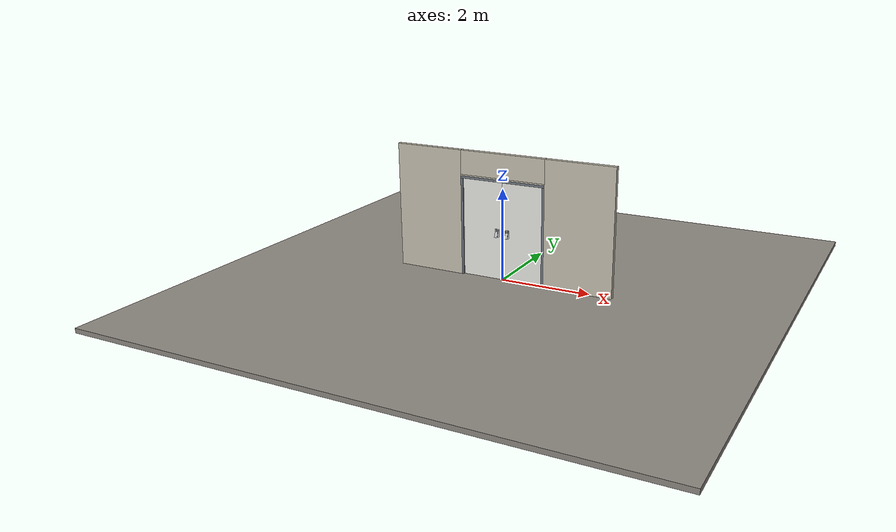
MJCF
<?xml version="1.0" ?>
<mujoco model="db0536_swing_double_minimal">
  <compiler angle="radian" meshdir="../../hardware" texturedir="../../textures" autolimits="true" inertiafromgeom="false"/>
  <option timestep="0.002" integrator="implicitfast" cone="elliptic" impratio="10" noslip_iterations="3">
    <flag multiccd="enable"/>
  </option>
  <size memory="16M"/>
  <default>
    <geom condim="4" solref="0.005 1" solimp="0.95 0.99 0.001"/>
    <joint solreflimit="0.005 1" solimplimit="0.95 0.99 0.001"/>
    <tendon solreflimit="0.005 1"/>
    <equality solref="0.002 1"/>
  </default>
  <visual>
    <headlight ambient="0.4 0.4 0.4" diffuse="0.7 0.7 0.7" specular="0.2 0.2 0.2"/>
    <quality shadowsize="4096"/>
    <map znear="0.01" zfar="60"/>
  </visual>
  <asset>
    <material name="mat_floor" rgba="0.55 0.53 0.5 1" specular="0.2" shininess="0.15" reflectance="0"/>
    <material name="mat_wall" rgba="0.78 0.76 0.7 1" specular="0.2" shininess="0.1" reflectance="0"/>
    <material name="mat_leaf_a" rgba="0.93 0.93 0.91 1" specular="0.23" shininess="0.44" reflectance="0.02"/>
    <material name="mat_hinge" rgba="0.65 0.66 0.68 1" specular="0.74" shininess="0.5" reflectance="0.36"/>
    <material name="mat_op_stainless" rgba="0.75 0.76 0.77 1" specular="0.8" shininess="0.65" reflectance="0.4"/>
    <material name="mat_closer" rgba="0.22 0.17 0.13 1" specular="0.8" shininess="0.6" reflectance="0.4"/>
    <material name="mat_kick" rgba="0.75 0.76 0.77 1" specular="0.8" shininess="0.65" reflectance="0.4"/>
    <material name="mat_leaf_b" rgba="0.93 0.93 0.91 1" specular="0.23" shininess="0.44" reflectance="0.02"/>
    <material name="mat_frame" rgba="0.45 0.48 0.52 1" specular="0.32" shininess="0.6" reflectance="0.08"/>
    <texture name="skybox" type="skybox" builtin="gradient" rgb1="0.6 0.7 0.85" rgb2="0.9 0.92 0.95" width="256" height="256"/>
  </asset>
  <worldbody>
    <light name="sun" pos="1.5 -2.5 4" dir="-0.3 0.5 -0.8" directional="true" diffuse="0.8 0.8 0.8" specular="0.3 0.3 0.3" castshadow="true"/>
    <light name="fill" pos="-1.5 2.5 3" dir="0.3 -0.5 -0.7" directional="true" diffuse="0.35 0.35 0.4" castshadow="false"/>
    <camera name="robot_view" pos="0 -2.637812 1.812087" xyaxes="1 0 0 0 0.26963 0.962964" fovy="52"/>
    <camera name="far_view" pos="0 2.637812 1.812087" xyaxes="-1 0 0 0 -0.26963 0.962964" fovy="52"/>
    <camera name="iso" pos="-2.004737 -2.215762 2.234138" xyaxes="0.741536 -0.670913 0 0.242917 0.268487 0.932151" fovy="46"/>
    <camera name="detail_handle" pos="0.0615 -0.730479 1.293663" xyaxes="0.97561 0.219512 0 -0.070934 0.315262 0.94635" fovy="38"/>
    <geom name="floor" type="box" size="6 6 0.05" pos="0 0 -0.05" material="mat_floor" group="0" contype="1" conaffinity="1" friction="0.8 0.005 0.0001" density="2400"/>
    <geom name="wall_left" type="box" size="0.76575 0.05 1.3735" pos="-1.73425 0 1.3735" material="mat_wall" group="0" contype="1" conaffinity="1" friction="0.6 0.005 0.0001" density="800"/>
    <geom name="wall_right" type="box" size="0.76575 0.05 1.3735" pos="1.73425 0 1.3735" material="mat_wall" group="0" contype="1" conaffinity="1" friction="0.6 0.005 0.0001" density="800"/>
    <geom name="wall_header" type="box" size="0.9685 0.05 0.26" pos="0 0 2.487" material="mat_wall" group="0" contype="1" conaffinity="1" friction="0.6 0.005 0.0001" density="800"/>
    <geom name="jamb_l" type="box" size="0.025 0.05 1.0735" pos="-0.9435 0 1.0735" material="mat_frame" group="0" contype="1" conaffinity="1" friction="0.6 0.005 0.0001" density="300"/>
    <geom name="jamb_r" type="box" size="0.025 0.05 1.0735" pos="0.9435 0 1.0735" material="mat_frame" group="0" contype="1" conaffinity="1" friction="0.6 0.005 0.0001" density="300"/>
    <geom name="jamb_head" type="box" size="0.9685 0.05 0.025" pos="0 0 2.172" material="mat_frame" group="0" contype="1" conaffinity="1" friction="0.6 0.005 0.0001" density="300"/>
    <geom name="head_stud" type="box" size="0.9685 0.05 0.015" pos="0 0 2.212" material="mat_wall" group="0" contype="1" conaffinity="1" friction="0.6 0.005 0.0001" density="500"/>
    <site name="approach_point" pos="0 -1.5 0" quat="1 0 0 0" size="0.05" rgba="0.2 0.9 0.2 0.5" group="4"/>
    <site name="goal_point" pos="0 1.5 0" quat="1 0 0 0" size="0.05" rgba="0.2 0.9 0.2 0.5" group="4"/>
    <site name="door_plane_center" pos="0 0 1.0735" quat="1 0 0 0" size="0.02" rgba="0.2 0.9 0.2 0.5" group="4"/>
    <site name="approach_point_2" pos="0 -1.5 0" quat="1 0 0 0" size="0.05" rgba="0.2 0.9 0.2 0.5" group="4"/>
    <site name="goal_point_2" pos="0 1.5 0" quat="1 0 0 0" size="0.05" rgba="0.2 0.9 0.2 0.5" group="4"/>
    <site name="door_plane_center_2" pos="0 0 1.0735" quat="1 0 0 0" size="0.02" rgba="0.2 0.9 0.2 0.5" group="4"/>
    <site name="approach_point_3" pos="0 -1.5 0" quat="1 0 0 0" size="0.05" rgba="0.2 0.9 0.2 0.5" group="4"/>
    <site name="goal_point_3" pos="0 1.5 0" quat="1 0 0 0" size="0.05" rgba="0.2 0.9 0.2 0.5" group="4"/>
    <site name="door_plane_center_3" pos="0 0 1.0735" quat="1 0 0 0" size="0.02" rgba="0.2 0.9 0.2 0.5" group="4"/>
    <body name="leaf_a" pos="-0.9185 0 0">
      <inertial pos="0.464708 0 1.075568" mass="50.695524" quat="0.499881 0.499881 -0.500119 0.500119" diaginertia="3.569454982 18.983588104 22.53586046"/>
      <joint name="leaf_a_hinge" type="hinge" axis="0 0 1" pos="0.003 0.029 0" limited="true" range="0 1.570796" damping="12.268966" frictionloss="1.060091" stiffness="12.025748" springref="-1.751242" armature="0.02"/>
      <geom name="leaf_a_slab" type="box" size="0.457 0.022 1.067" pos="0.46 0 1.076" material="mat_leaf_a" group="0" contype="1" conaffinity="1" friction="0.4 0.005 0.0001" density="1"/>
      <geom name="leaf_a_handle_paddle_backplate_n" type="box" size="0.044 0.003 0.09" pos="0.8 -0.025 1.035895" material="mat_op_stainless" group="0" contype="1" conaffinity="1" friction="0.6 0.005 0.0001" density="3000"/>
      <geom name="leaf_a_handle_paddle_bearing_n_-1" type="box" size="0.005 0.006 0.009" pos="0.762 -0.034 1.098895" material="mat_op_stainless" group="0" contype="1" conaffinity="1" friction="0.6 0.005 0.0001" density="3000"/>
      <geom name="leaf_a_handle_paddle_bearing_n_1" type="box" size="0.005 0.006 0.009" pos="0.838 -0.034 1.098895" material="mat_op_stainless" group="0" contype="1" conaffinity="1" friction="0.6 0.005 0.0001" density="3000"/>
      <geom name="leaf_a_handle_paddle_pin_n" type="cylinder" size="0.004 0.043" pos="0.8 -0.04 1.098895" quat="0.707107 0 0.707107 0" material="mat_op_stainless" group="1" contype="0" conaffinity="0" density="7850"/>
      <geom name="leaf_a_handle_paddle_backplate_p" type="box" size="0.044 0.003 0.09" pos="0.8 0.025 1.035895" material="mat_op_stainless" group="0" contype="1" conaffinity="1" friction="0.6 0.005 0.0001" density="3000"/>
      <geom name="leaf_a_handle_paddle_bearing_p_-1" type="box" size="0.005 0.006 0.009" pos="0.762 0.034 1.098895" material="mat_op_stainless" group="0" contype="1" conaffinity="1" friction="0.6 0.005 0.0001" density="3000"/>
      <geom name="leaf_a_handle_paddle_bearing_p_1" type="box" size="0.005 0.006 0.009" pos="0.838 0.034 1.098895" material="mat_op_stainless" group="0" contype="1" conaffinity="1" friction="0.6 0.005 0.0001" density="3000"/>
      <geom name="leaf_a_handle_paddle_pin_p" type="cylinder" size="0.004 0.043" pos="0.8 0.04 1.098895" quat="0.707107 0 0.707107 0" material="mat_op_stainless" group="1" contype="0" conaffinity="0" density="7850"/>
      <site name="leaf_a_edge_mid" pos="0.917 0 1.067" quat="1 0 0 0" size="0.02" rgba="0.2 0.9 0.2 0.5" group="4"/>
      <body name="leaf_a_handle" pos="0.8 -0.04 1.098895">
        <inertial pos="0 -0.031074 -0.073496" mass="0.333798" quat="-0.390699 0.589368 0.589368 0.390699" diaginertia="0.00010582 0.00062862 0.000726597"/>
        <joint name="leaf_a_handle_hinge" type="hinge" axis="1 0 0" limited="true" range="0 0.4" damping="0.27663" frictionloss="0.056" stiffness="1.5" springref="-1" armature="0.01"/>
        <geom name="leaf_a_handle_paddle_col_n" type="box" size="0.032 0.006 0.063" pos="0 -0.035048 -0.082895" quat="0.980067 -0.198669 0 0" material="mat_op_stainless" group="0" contype="1" conaffinity="1" friction="0.6 0.005 0.0001" density="3000"/>
        <geom name="leaf_a_handle_paddle_neck_n" type="box" size="0.012 0.004 0.021" pos="0 -0.008178 -0.019342" quat="0.980067 -0.198669 0 0" material="mat_op_stainless" group="0" contype="1" conaffinity="1" friction="0.6 0.005 0.0001" density="3000"/>
        <geom name="leaf_a_handle_paddle_hub_n" type="cylinder" size="0.008 0.016" pos="0 0 0" quat="0.707107 0 0.707107 0" material="mat_op_stainless" group="1" contype="0" conaffinity="0" density="3000"/>
        <site name="leaf_a_handle_grip_n" pos="0 -0.040574 -0.080559" quat="0.833492 0.552531 0 0" size="0.012" rgba="0.2 0.9 0.2 0.5" group="4"/>
      </body>
      <body name="leaf_a_handle_paddle_follower_p" pos="0.8 0.04 1.098895">
        <inertial pos="0 0.031074 -0.073496" mass="0.333798" quat="0.589368 -0.390699 -0.390699 -0.589368" diaginertia="0.00010582 0.00062862 0.000726597"/>
        <joint name="leaf_a_handle_paddle_follower_p_hinge" type="hinge" axis="1 0 0" limited="true" range="0 0.4" armature="0.002"/>
        <geom name="leaf_a_handle_paddle_col_p" type="box" size="0.032 0.006 0.063" pos="0 0.035048 -0.082895" quat="0.980067 0.198669 0 0" material="mat_op_stainless" group="0" contype="1" conaffinity="1" friction="0.6 0.005 0.0001" density="3000"/>
        <geom name="leaf_a_handle_paddle_neck_p" type="box" size="0.012 0.004 0.021" pos="0 0.008178 -0.019342" quat="0.980067 0.198669 0 0" material="mat_op_stainless" group="0" contype="1" conaffinity="1" friction="0.6 0.005 0.0001" density="3000"/>
        <geom name="leaf_a_handle_paddle_hub_p" type="cylinder" size="0.008 0.016" pos="0 0 0" quat="0.707107 0 0.707107 0" material="mat_op_stainless" group="1" contype="0" conaffinity="0" density="3000"/>
        <site name="leaf_a_handle_grip_p" pos="0 0.029521 -0.085232" quat="0.552531 0.833492 0 0" size="0.012" rgba="0.2 0.9 0.2 0.5" group="4"/>
      </body>
    </body>
    <body name="leaf_b" pos="0.9185 0 0">
      <inertial pos="-0.464708 0 1.075568" mass="50.695524" quat="0.500119 0.500119 -0.499881 0.499881" diaginertia="3.569454982 18.983588104 22.53586046"/>
      <joint name="leaf_b_hinge" type="hinge" axis="0 0 1" pos="-0.003 -0.029 0" limited="true" range="0 1.570796" damping="12.268966" frictionloss="1.060091" stiffness="12.025748" springref="-1.751242" armature="0.02"/>
      <geom name="leaf_b_slab" type="box" size="0.457 0.022 1.067" pos="-0.46 0 1.076" material="mat_leaf_b" group="0" contype="1" conaffinity="1" friction="0.4 0.005 0.0001" density="1"/>
      <geom name="leaf_b_handle_paddle_backplate_n" type="box" size="0.044 0.003 0.09" pos="-0.8 -0.025 1.035895" material="mat_op_stainless" group="0" contype="1" conaffinity="1" friction="0.6 0.005 0.0001" density="3000"/>
      <geom name="leaf_b_handle_paddle_bearing_n_-1" type="box" size="0.005 0.006 0.009" pos="-0.838 -0.034 1.098895" material="mat_op_stainless" group="0" contype="1" conaffinity="1" friction="0.6 0.005 0.0001" density="3000"/>
      <geom name="leaf_b_handle_paddle_bearing_n_1" type="box" size="0.005 0.006 0.009" pos="-0.762 -0.034 1.098895" material="mat_op_stainless" group="0" contype="1" conaffinity="1" friction="0.6 0.005 0.0001" density="3000"/>
      <geom name="leaf_b_handle_paddle_pin_n" type="cylinder" size="0.004 0.043" pos="-0.8 -0.04 1.098895" quat="0.707107 0 0.707107 0" material="mat_op_stainless" group="1" contype="0" conaffinity="0" density="7850"/>
      <geom name="leaf_b_handle_paddle_backplate_p" type="box" size="0.044 0.003 0.09" pos="-0.8 0.025 1.035895" material="mat_op_stainless" group="0" contype="1" conaffinity="1" friction="0.6 0.005 0.0001" density="3000"/>
      <geom name="leaf_b_handle_paddle_bearing_p_-1" type="box" size="0.005 0.006 0.009" pos="-0.838 0.034 1.098895" material="mat_op_stainless" group="0" contype="1" conaffinity="1" friction="0.6 0.005 0.0001" density="3000"/>
      <geom name="leaf_b_handle_paddle_bearing_p_1" type="box" size="0.005 0.006 0.009" pos="-0.762 0.034 1.098895" material="mat_op_stainless" group="0" contype="1" conaffinity="1" friction="0.6 0.005 0.0001" density="3000"/>
      <geom name="leaf_b_handle_paddle_pin_p" type="cylinder" size="0.004 0.043" pos="-0.8 0.04 1.098895" quat="0.707107 0 0.707107 0" material="mat_op_stainless" group="1" contype="0" conaffinity="0" density="7850"/>
      <site name="leaf_b_edge_mid" pos="-0.917 0 1.067" quat="1 0 0 0" size="0.02" rgba="0.2 0.9 0.2 0.5" group="4"/>
      <body name="leaf_b_handle" pos="-0.8 -0.04 1.098895">
        <inertial pos="0 -0.031074 -0.073496" mass="0.333798" quat="-0.390699 0.589368 0.589368 0.390699" diaginertia="0.00010582 0.00062862 0.000726597"/>
        <joint name="leaf_b_handle_hinge" type="hinge" axis="-1 0 0" limited="true" range="0 0.4" damping="0.27663" frictionloss="0.056" stiffness="1.5" springref="-1" armature="0.01"/>
        <geom name="leaf_b_handle_paddle_col_n" type="box" size="0.032 0.006 0.063" pos="0 -0.035048 -0.082895" quat="0.980067 -0.198669 0 0" material="mat_op_stainless" group="0" contype="1" conaffinity="1" friction="0.6 0.005 0.0001" density="3000"/>
        <geom name="leaf_b_handle_paddle_neck_n" type="box" size="0.012 0.004 0.021" pos="0 -0.008178 -0.019342" quat="0.980067 -0.198669 0 0" material="mat_op_stainless" group="0" contype="1" conaffinity="1" friction="0.6 0.005 0.0001" density="3000"/>
        <geom name="leaf_b_handle_paddle_hub_n" type="cylinder" size="0.008 0.016" pos="0 0 0" quat="0.707107 0 0.707107 0" material="mat_op_stainless" group="1" contype="0" conaffinity="0" density="3000"/>
        <site name="leaf_b_handle_grip_n" pos="0 -0.029521 -0.085232" quat="0.552531 -0.833492 0 0" size="0.012" rgba="0.2 0.9 0.2 0.5" group="4"/>
      </body>
      <body name="leaf_b_handle_paddle_follower_p" pos="-0.8 0.04 1.098895">
        <inertial pos="0 0.031074 -0.073496" mass="0.333798" quat="0.589368 -0.390699 -0.390699 -0.589368" diaginertia="0.00010582 0.00062862 0.000726597"/>
        <joint name="leaf_b_handle_paddle_follower_p_hinge" type="hinge" axis="-1 0 0" limited="true" range="0 0.4" armature="0.002"/>
        <geom name="leaf_b_handle_paddle_col_p" type="box" size="0.032 0.006 0.063" pos="0 0.035048 -0.082895" quat="0.980067 0.198669 0 0" material="mat_op_stainless" group="0" contype="1" conaffinity="1" friction="0.6 0.005 0.0001" density="3000"/>
        <geom name="leaf_b_handle_paddle_neck_p" type="box" size="0.012 0.004 0.021" pos="0 0.008178 -0.019342" quat="0.980067 0.198669 0 0" material="mat_op_stainless" group="0" contype="1" conaffinity="1" friction="0.6 0.005 0.0001" density="3000"/>
        <geom name="leaf_b_handle_paddle_hub_p" type="cylinder" size="0.008 0.016" pos="0 0 0" quat="0.707107 0 0.707107 0" material="mat_op_stainless" group="1" contype="0" conaffinity="0" density="3000"/>
        <site name="leaf_b_handle_grip_p" pos="0 0.040574 -0.080559" quat="0.833492 -0.552531 0 0" size="0.012" rgba="0.2 0.9 0.2 0.5" group="4"/>
      </body>
    </body>
  </worldbody>
  <equality>
    <joint name="leaf_a_handle_paddle_cam_p" joint1="leaf_a_handle_paddle_follower_p_hinge" joint2="leaf_a_handle_hinge" polycoef="0 1 0 0 0" active="true"/>
    <joint name="leaf_b_handle_paddle_cam_p" joint1="leaf_b_handle_paddle_follower_p_hinge" joint2="leaf_b_handle_hinge" polycoef="0 1 0 0 0" active="true"/>
  </equality>
  <sensor>
    <jointpos name="leaf_a_hinge_pos" joint="leaf_a_hinge"/>
    <jointvel name="leaf_a_hinge_vel" joint="leaf_a_hinge"/>
    <jointpos name="leaf_a_handle_hinge_pos" joint="leaf_a_handle_hinge"/>
    <jointvel name="leaf_a_handle_hinge_vel" joint="leaf_a_handle_hinge"/>
    <jointpos name="leaf_b_hinge_pos" joint="leaf_b_hinge"/>
    <jointvel name="leaf_b_hinge_vel" joint="leaf_b_hinge"/>
    <jointpos name="leaf_b_handle_hinge_pos" joint="leaf_b_handle_hinge"/>
    <jointvel name="leaf_b_handle_hinge_vel" joint="leaf_b_handle_hinge"/>
  </sensor>
</mujoco>
